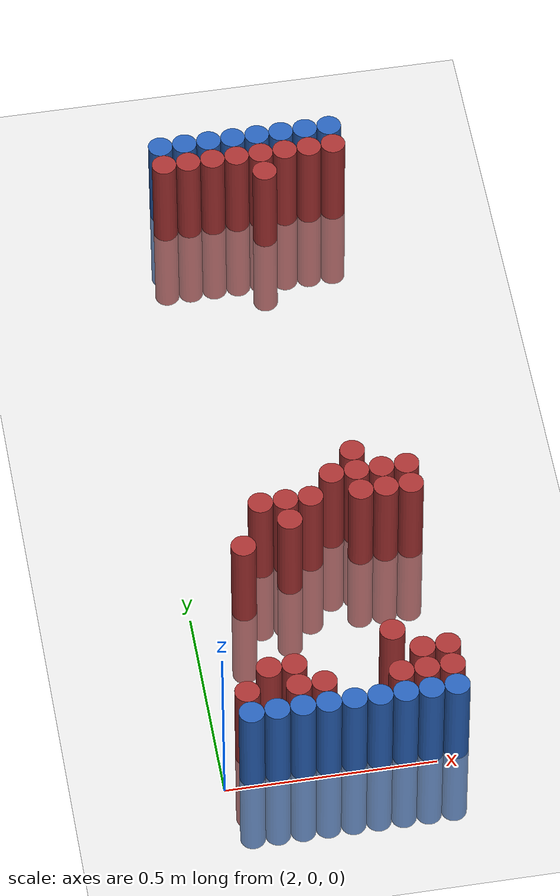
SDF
<sdf version="1.6">
 <world name="default">
  <model name="ground_plane">
   <static>1</static>
   <link name="link">
    <collision name="collision">
     <geometry><plane><normal>0 0 1</normal><size>100 100</size></plane></geometry>
     <surface><friction><ode><mu>100</mu><mu2>50</mu2></ode></friction></surface>
    </collision>
    <visual name="visual">
     <cast_shadows>0</cast_shadows>
     <geometry><plane><normal>0 0 1</normal><size>100 100</size></plane></geometry>
     <material>
      <script><uri>file://media/materials/scripts/gazebo.material</uri><name>Gazebo/Grey</name></script>
     </material>
    </visual>
   </link>
  </model>
  <model name="unit_cylinder_96">
   <static>1</static>
   <pose>2.130000 1.770000 0.000000 0.000000 0.000000 0.000000</pose>
   <link name="link">
    <inertial>
     <mass>1</mass>
     <inertia><ixx>0.145833</ixx><ixy>0</ixy><ixz>0</ixz><iyy>0.145833</iyy><iyz>0</iyz><izz>0.125</izz></inertia>
    </inertial>
    <collision name="collision">
     <geometry><cylinder><radius>0.030000</radius><length>0.5</length></cylinder></geometry>
    </collision>
    <visual name="visual">
     <geometry><cylinder><radius>0.030000</radius><length>0.5</length></cylinder></geometry>
     <material>
      <ambient>0.152000 0.379000 0.720000 1</ambient>
      <diffuse>0.152000 0.379000 0.720000 1</diffuse>
     </material>
     <material>
      <script><name>Gazebo/Grey</name><uri>file://media/materials/scripts/gazebo.material</uri></script>
     </material>
    </visual>
   </link>
  </model>
  <model name="unit_cylinder_97">
   <static>1</static>
   <pose>2.190000 1.770000 0.000000 0.000000 0.000000 0.000000</pose>
   <link name="link">
    <inertial>
     <mass>1</mass>
     <inertia><ixx>0.145833</ixx><ixy>0</ixy><ixz>0</ixz><iyy>0.145833</iyy><iyz>0</iyz><izz>0.125</izz></inertia>
    </inertial>
    <collision name="collision">
     <geometry><cylinder><radius>0.030000</radius><length>0.5</length></cylinder></geometry>
    </collision>
    <visual name="visual">
     <geometry><cylinder><radius>0.030000</radius><length>0.5</length></cylinder></geometry>
     <material>
      <ambient>0.152000 0.379000 0.720000 1</ambient>
      <diffuse>0.152000 0.379000 0.720000 1</diffuse>
     </material>
     <material>
      <script><name>Gazebo/Grey</name><uri>file://media/materials/scripts/gazebo.material</uri></script>
     </material>
    </visual>
   </link>
  </model>
  <model name="unit_cylinder_98">
   <static>1</static>
   <pose>2.250000 1.770000 0.000000 0.000000 0.000000 0.000000</pose>
   <link name="link">
    <inertial>
     <mass>1</mass>
     <inertia><ixx>0.145833</ixx><ixy>0</ixy><ixz>0</ixz><iyy>0.145833</iyy><iyz>0</iyz><izz>0.125</izz></inertia>
    </inertial>
    <collision name="collision">
     <geometry><cylinder><radius>0.030000</radius><length>0.5</length></cylinder></geometry>
    </collision>
    <visual name="visual">
     <geometry><cylinder><radius>0.030000</radius><length>0.5</length></cylinder></geometry>
     <material>
      <ambient>0.152000 0.379000 0.720000 1</ambient>
      <diffuse>0.152000 0.379000 0.720000 1</diffuse>
     </material>
     <material>
      <script><name>Gazebo/Grey</name><uri>file://media/materials/scripts/gazebo.material</uri></script>
     </material>
    </visual>
   </link>
  </model>
  <model name="unit_cylinder_99">
   <static>1</static>
   <pose>2.310000 1.770000 0.000000 0.000000 0.000000 0.000000</pose>
   <link name="link">
    <inertial>
     <mass>1</mass>
     <inertia><ixx>0.145833</ixx><ixy>0</ixy><ixz>0</ixz><iyy>0.145833</iyy><iyz>0</iyz><izz>0.125</izz></inertia>
    </inertial>
    <collision name="collision">
     <geometry><cylinder><radius>0.030000</radius><length>0.5</length></cylinder></geometry>
    </collision>
    <visual name="visual">
     <geometry><cylinder><radius>0.030000</radius><length>0.5</length></cylinder></geometry>
     <material>
      <ambient>0.152000 0.379000 0.720000 1</ambient>
      <diffuse>0.152000 0.379000 0.720000 1</diffuse>
     </material>
     <material>
      <script><name>Gazebo/Grey</name><uri>file://media/materials/scripts/gazebo.material</uri></script>
     </material>
    </visual>
   </link>
  </model>
  <model name="unit_cylinder_100">
   <static>1</static>
   <pose>2.370000 1.770000 0.000000 0.000000 0.000000 0.000000</pose>
   <link name="link">
    <inertial>
     <mass>1</mass>
     <inertia><ixx>0.145833</ixx><ixy>0</ixy><ixz>0</ixz><iyy>0.145833</iyy><iyz>0</iyz><izz>0.125</izz></inertia>
    </inertial>
    <collision name="collision">
     <geometry><cylinder><radius>0.030000</radius><length>0.5</length></cylinder></geometry>
    </collision>
    <visual name="visual">
     <geometry><cylinder><radius>0.030000</radius><length>0.5</length></cylinder></geometry>
     <material>
      <ambient>0.152000 0.379000 0.720000 1</ambient>
      <diffuse>0.152000 0.379000 0.720000 1</diffuse>
     </material>
     <material>
      <script><name>Gazebo/Grey</name><uri>file://media/materials/scripts/gazebo.material</uri></script>
     </material>
    </visual>
   </link>
  </model>
  <model name="unit_cylinder_101">
   <static>1</static>
   <pose>2.430000 1.770000 0.000000 0.000000 0.000000 0.000000</pose>
   <link name="link">
    <inertial>
     <mass>1</mass>
     <inertia><ixx>0.145833</ixx><ixy>0</ixy><ixz>0</ixz><iyy>0.145833</iyy><iyz>0</iyz><izz>0.125</izz></inertia>
    </inertial>
    <collision name="collision">
     <geometry><cylinder><radius>0.030000</radius><length>0.5</length></cylinder></geometry>
    </collision>
    <visual name="visual">
     <geometry><cylinder><radius>0.030000</radius><length>0.5</length></cylinder></geometry>
     <material>
      <ambient>0.152000 0.379000 0.720000 1</ambient>
      <diffuse>0.152000 0.379000 0.720000 1</diffuse>
     </material>
     <material>
      <script><name>Gazebo/Grey</name><uri>file://media/materials/scripts/gazebo.material</uri></script>
     </material>
    </visual>
   </link>
  </model>
  <model name="unit_cylinder_102">
   <static>1</static>
   <pose>2.490000 1.770000 0.000000 0.000000 0.000000 0.000000</pose>
   <link name="link">
    <inertial>
     <mass>1</mass>
     <inertia><ixx>0.145833</ixx><ixy>0</ixy><ixz>0</ixz><iyy>0.145833</iyy><iyz>0</iyz><izz>0.125</izz></inertia>
    </inertial>
    <collision name="collision">
     <geometry><cylinder><radius>0.030000</radius><length>0.5</length></cylinder></geometry>
    </collision>
    <visual name="visual">
     <geometry><cylinder><radius>0.030000</radius><length>0.5</length></cylinder></geometry>
     <material>
      <ambient>0.152000 0.379000 0.720000 1</ambient>
      <diffuse>0.152000 0.379000 0.720000 1</diffuse>
     </material>
     <material>
      <script><name>Gazebo/Grey</name><uri>file://media/materials/scripts/gazebo.material</uri></script>
     </material>
    </visual>
   </link>
  </model>
  <model name="unit_cylinder_103">
   <static>1</static>
   <pose>2.550000 1.770000 0.000000 0.000000 0.000000 0.000000</pose>
   <link name="link">
    <inertial>
     <mass>1</mass>
     <inertia><ixx>0.145833</ixx><ixy>0</ixy><ixz>0</ixz><iyy>0.145833</iyy><iyz>0</iyz><izz>0.125</izz></inertia>
    </inertial>
    <collision name="collision">
     <geometry><cylinder><radius>0.030000</radius><length>0.5</length></cylinder></geometry>
    </collision>
    <visual name="visual">
     <geometry><cylinder><radius>0.030000</radius><length>0.5</length></cylinder></geometry>
     <material>
      <ambient>0.152000 0.379000 0.720000 1</ambient>
      <diffuse>0.152000 0.379000 0.720000 1</diffuse>
     </material>
     <material>
      <script><name>Gazebo/Grey</name><uri>file://media/materials/scripts/gazebo.material</uri></script>
     </material>
    </visual>
   </link>
  </model>
  <model name="unit_cylinder_125">
   <static>1</static>
   <pose>2.130000 1.710000 0.000000 0.000000 0.000000 0.000000</pose>
   <link name="link">
    <inertial>
     <mass>1</mass>
     <inertia><ixx>0.145833</ixx><ixy>0</ixy><ixz>0</ixz><iyy>0.145833</iyy><iyz>0</iyz><izz>0.125</izz></inertia>
    </inertial>
    <collision name="collision">
     <geometry><cylinder><radius>0.030000</radius><length>0.5</length></cylinder></geometry>
    </collision>
    <visual name="visual">
     <geometry><cylinder><radius>0.030000</radius><length>0.5</length></cylinder></geometry>
     <material>
      <ambient>0.648000 0.192000 0.192000 1</ambient>
      <diffuse>0.648000 0.192000 0.192000 1</diffuse>
     </material>
     <material>
      <script><name>Gazebo/Grey</name><uri>file://media/materials/scripts/gazebo.material</uri></script>
     </material>
    </visual>
   </link>
  </model>
  <model name="unit_cylinder_126">
   <static>1</static>
   <pose>2.190000 1.710000 0.000000 0.000000 0.000000 0.000000</pose>
   <link name="link">
    <inertial>
     <mass>1</mass>
     <inertia><ixx>0.145833</ixx><ixy>0</ixy><ixz>0</ixz><iyy>0.145833</iyy><iyz>0</iyz><izz>0.125</izz></inertia>
    </inertial>
    <collision name="collision">
     <geometry><cylinder><radius>0.030000</radius><length>0.5</length></cylinder></geometry>
    </collision>
    <visual name="visual">
     <geometry><cylinder><radius>0.030000</radius><length>0.5</length></cylinder></geometry>
     <material>
      <ambient>0.648000 0.192000 0.192000 1</ambient>
      <diffuse>0.648000 0.192000 0.192000 1</diffuse>
     </material>
     <material>
      <script><name>Gazebo/Grey</name><uri>file://media/materials/scripts/gazebo.material</uri></script>
     </material>
    </visual>
   </link>
  </model>
  <model name="unit_cylinder_127">
   <static>1</static>
   <pose>2.250000 1.710000 0.000000 0.000000 0.000000 0.000000</pose>
   <link name="link">
    <inertial>
     <mass>1</mass>
     <inertia><ixx>0.145833</ixx><ixy>0</ixy><ixz>0</ixz><iyy>0.145833</iyy><iyz>0</iyz><izz>0.125</izz></inertia>
    </inertial>
    <collision name="collision">
     <geometry><cylinder><radius>0.030000</radius><length>0.5</length></cylinder></geometry>
    </collision>
    <visual name="visual">
     <geometry><cylinder><radius>0.030000</radius><length>0.5</length></cylinder></geometry>
     <material>
      <ambient>0.648000 0.192000 0.192000 1</ambient>
      <diffuse>0.648000 0.192000 0.192000 1</diffuse>
     </material>
     <material>
      <script><name>Gazebo/Grey</name><uri>file://media/materials/scripts/gazebo.material</uri></script>
     </material>
    </visual>
   </link>
  </model>
  <model name="unit_cylinder_128">
   <static>1</static>
   <pose>2.310000 1.710000 0.000000 0.000000 0.000000 0.000000</pose>
   <link name="link">
    <inertial>
     <mass>1</mass>
     <inertia><ixx>0.145833</ixx><ixy>0</ixy><ixz>0</ixz><iyy>0.145833</iyy><iyz>0</iyz><izz>0.125</izz></inertia>
    </inertial>
    <collision name="collision">
     <geometry><cylinder><radius>0.030000</radius><length>0.5</length></cylinder></geometry>
    </collision>
    <visual name="visual">
     <geometry><cylinder><radius>0.030000</radius><length>0.5</length></cylinder></geometry>
     <material>
      <ambient>0.648000 0.192000 0.192000 1</ambient>
      <diffuse>0.648000 0.192000 0.192000 1</diffuse>
     </material>
     <material>
      <script><name>Gazebo/Grey</name><uri>file://media/materials/scripts/gazebo.material</uri></script>
     </material>
    </visual>
   </link>
  </model>
  <model name="unit_cylinder_129">
   <static>1</static>
   <pose>2.370000 1.710000 0.000000 0.000000 0.000000 0.000000</pose>
   <link name="link">
    <inertial>
     <mass>1</mass>
     <inertia><ixx>0.145833</ixx><ixy>0</ixy><ixz>0</ixz><iyy>0.145833</iyy><iyz>0</iyz><izz>0.125</izz></inertia>
    </inertial>
    <collision name="collision">
     <geometry><cylinder><radius>0.030000</radius><length>0.5</length></cylinder></geometry>
    </collision>
    <visual name="visual">
     <geometry><cylinder><radius>0.030000</radius><length>0.5</length></cylinder></geometry>
     <material>
      <ambient>0.648000 0.192000 0.192000 1</ambient>
      <diffuse>0.648000 0.192000 0.192000 1</diffuse>
     </material>
     <material>
      <script><name>Gazebo/Grey</name><uri>file://media/materials/scripts/gazebo.material</uri></script>
     </material>
    </visual>
   </link>
  </model>
  <model name="unit_cylinder_130">
   <static>1</static>
   <pose>2.430000 1.710000 0.000000 0.000000 0.000000 0.000000</pose>
   <link name="link">
    <inertial>
     <mass>1</mass>
     <inertia><ixx>0.145833</ixx><ixy>0</ixy><ixz>0</ixz><iyy>0.145833</iyy><iyz>0</iyz><izz>0.125</izz></inertia>
    </inertial>
    <collision name="collision">
     <geometry><cylinder><radius>0.030000</radius><length>0.5</length></cylinder></geometry>
    </collision>
    <visual name="visual">
     <geometry><cylinder><radius>0.030000</radius><length>0.5</length></cylinder></geometry>
     <material>
      <ambient>0.648000 0.192000 0.192000 1</ambient>
      <diffuse>0.648000 0.192000 0.192000 1</diffuse>
     </material>
     <material>
      <script><name>Gazebo/Grey</name><uri>file://media/materials/scripts/gazebo.material</uri></script>
     </material>
    </visual>
   </link>
  </model>
  <model name="unit_cylinder_131">
   <static>1</static>
   <pose>2.490000 1.710000 0.000000 0.000000 0.000000 0.000000</pose>
   <link name="link">
    <inertial>
     <mass>1</mass>
     <inertia><ixx>0.145833</ixx><ixy>0</ixy><ixz>0</ixz><iyy>0.145833</iyy><iyz>0</iyz><izz>0.125</izz></inertia>
    </inertial>
    <collision name="collision">
     <geometry><cylinder><radius>0.030000</radius><length>0.5</length></cylinder></geometry>
    </collision>
    <visual name="visual">
     <geometry><cylinder><radius>0.030000</radius><length>0.5</length></cylinder></geometry>
     <material>
      <ambient>0.648000 0.192000 0.192000 1</ambient>
      <diffuse>0.648000 0.192000 0.192000 1</diffuse>
     </material>
     <material>
      <script><name>Gazebo/Grey</name><uri>file://media/materials/scripts/gazebo.material</uri></script>
     </material>
    </visual>
   </link>
  </model>
  <model name="unit_cylinder_132">
   <static>1</static>
   <pose>2.550000 1.710000 0.000000 0.000000 0.000000 0.000000</pose>
   <link name="link">
    <inertial>
     <mass>1</mass>
     <inertia><ixx>0.145833</ixx><ixy>0</ixy><ixz>0</ixz><iyy>0.145833</iyy><iyz>0</iyz><izz>0.125</izz></inertia>
    </inertial>
    <collision name="collision">
     <geometry><cylinder><radius>0.030000</radius><length>0.5</length></cylinder></geometry>
    </collision>
    <visual name="visual">
     <geometry><cylinder><radius>0.030000</radius><length>0.5</length></cylinder></geometry>
     <material>
      <ambient>0.648000 0.192000 0.192000 1</ambient>
      <diffuse>0.648000 0.192000 0.192000 1</diffuse>
     </material>
     <material>
      <script><name>Gazebo/Grey</name><uri>file://media/materials/scripts/gazebo.material</uri></script>
     </material>
    </visual>
   </link>
  </model>
  <model name="unit_cylinder_144">
   <static>1</static>
   <pose>2.370000 1.650000 0.000000 0.000000 0.000000 0.000000</pose>
   <link name="link">
    <inertial>
     <mass>1</mass>
     <inertia><ixx>0.145833</ixx><ixy>0</ixy><ixz>0</ixz><iyy>0.145833</iyy><iyz>0</iyz><izz>0.125</izz></inertia>
    </inertial>
    <collision name="collision">
     <geometry><cylinder><radius>0.030000</radius><length>0.5</length></cylinder></geometry>
    </collision>
    <visual name="visual">
     <geometry><cylinder><radius>0.030000</radius><length>0.5</length></cylinder></geometry>
     <material>
      <ambient>0.648000 0.192000 0.192000 1</ambient>
      <diffuse>0.648000 0.192000 0.192000 1</diffuse>
     </material>
     <material>
      <script><name>Gazebo/Grey</name><uri>file://media/materials/scripts/gazebo.material</uri></script>
     </material>
    </visual>
   </link>
  </model>
  <model name="unit_cylinder_199">
   <static>1</static>
   <pose>2.430000 0.750000 0.000000 0.000000 0.000000 0.000000</pose>
   <link name="link">
    <inertial>
     <mass>1</mass>
     <inertia><ixx>0.145833</ixx><ixy>0</ixy><ixz>0</ixz><iyy>0.145833</iyy><iyz>0</iyz><izz>0.125</izz></inertia>
    </inertial>
    <collision name="collision">
     <geometry><cylinder><radius>0.030000</radius><length>0.5</length></cylinder></geometry>
    </collision>
    <visual name="visual">
     <geometry><cylinder><radius>0.030000</radius><length>0.5</length></cylinder></geometry>
     <material>
      <ambient>0.648000 0.192000 0.192000 1</ambient>
      <diffuse>0.648000 0.192000 0.192000 1</diffuse>
     </material>
     <material>
      <script><name>Gazebo/Grey</name><uri>file://media/materials/scripts/gazebo.material</uri></script>
     </material>
    </visual>
   </link>
  </model>
  <model name="unit_cylinder_200">
   <static>1</static>
   <pose>2.370000 0.690000 0.000000 0.000000 0.000000 0.000000</pose>
   <link name="link">
    <inertial>
     <mass>1</mass>
     <inertia><ixx>0.145833</ixx><ixy>0</ixy><ixz>0</ixz><iyy>0.145833</iyy><iyz>0</iyz><izz>0.125</izz></inertia>
    </inertial>
    <collision name="collision">
     <geometry><cylinder><radius>0.030000</radius><length>0.5</length></cylinder></geometry>
    </collision>
    <visual name="visual">
     <geometry><cylinder><radius>0.030000</radius><length>0.5</length></cylinder></geometry>
     <material>
      <ambient>0.648000 0.192000 0.192000 1</ambient>
      <diffuse>0.648000 0.192000 0.192000 1</diffuse>
     </material>
     <material>
      <script><name>Gazebo/Grey</name><uri>file://media/materials/scripts/gazebo.material</uri></script>
     </material>
    </visual>
   </link>
  </model>
  <model name="unit_cylinder_201">
   <static>1</static>
   <pose>2.430000 0.690000 0.000000 0.000000 0.000000 0.000000</pose>
   <link name="link">
    <inertial>
     <mass>1</mass>
     <inertia><ixx>0.145833</ixx><ixy>0</ixy><ixz>0</ixz><iyy>0.145833</iyy><iyz>0</iyz><izz>0.125</izz></inertia>
    </inertial>
    <collision name="collision">
     <geometry><cylinder><radius>0.030000</radius><length>0.5</length></cylinder></geometry>
    </collision>
    <visual name="visual">
     <geometry><cylinder><radius>0.030000</radius><length>0.5</length></cylinder></geometry>
     <material>
      <ambient>0.648000 0.192000 0.192000 1</ambient>
      <diffuse>0.648000 0.192000 0.192000 1</diffuse>
     </material>
     <material>
      <script><name>Gazebo/Grey</name><uri>file://media/materials/scripts/gazebo.material</uri></script>
     </material>
    </visual>
   </link>
  </model>
  <model name="unit_cylinder_202">
   <static>1</static>
   <pose>2.490000 0.690000 0.000000 0.000000 0.000000 0.000000</pose>
   <link name="link">
    <inertial>
     <mass>1</mass>
     <inertia><ixx>0.145833</ixx><ixy>0</ixy><ixz>0</ixz><iyy>0.145833</iyy><iyz>0</iyz><izz>0.125</izz></inertia>
    </inertial>
    <collision name="collision">
     <geometry><cylinder><radius>0.030000</radius><length>0.5</length></cylinder></geometry>
    </collision>
    <visual name="visual">
     <geometry><cylinder><radius>0.030000</radius><length>0.5</length></cylinder></geometry>
     <material>
      <ambient>0.648000 0.192000 0.192000 1</ambient>
      <diffuse>0.648000 0.192000 0.192000 1</diffuse>
     </material>
     <material>
      <script><name>Gazebo/Grey</name><uri>file://media/materials/scripts/gazebo.material</uri></script>
     </material>
    </visual>
   </link>
  </model>
  <model name="unit_cylinder_203">
   <static>1</static>
   <pose>2.550000 0.690000 0.000000 0.000000 0.000000 0.000000</pose>
   <link name="link">
    <inertial>
     <mass>1</mass>
     <inertia><ixx>0.145833</ixx><ixy>0</ixy><ixz>0</ixz><iyy>0.145833</iyy><iyz>0</iyz><izz>0.125</izz></inertia>
    </inertial>
    <collision name="collision">
     <geometry><cylinder><radius>0.030000</radius><length>0.5</length></cylinder></geometry>
    </collision>
    <visual name="visual">
     <geometry><cylinder><radius>0.030000</radius><length>0.5</length></cylinder></geometry>
     <material>
      <ambient>0.648000 0.192000 0.192000 1</ambient>
      <diffuse>0.648000 0.192000 0.192000 1</diffuse>
     </material>
     <material>
      <script><name>Gazebo/Grey</name><uri>file://media/materials/scripts/gazebo.material</uri></script>
     </material>
    </visual>
   </link>
  </model>
  <model name="unit_cylinder_206">
   <static>1</static>
   <pose>2.190000 0.630000 0.000000 0.000000 0.000000 0.000000</pose>
   <link name="link">
    <inertial>
     <mass>1</mass>
     <inertia><ixx>0.145833</ixx><ixy>0</ixy><ixz>0</ixz><iyy>0.145833</iyy><iyz>0</iyz><izz>0.125</izz></inertia>
    </inertial>
    <collision name="collision">
     <geometry><cylinder><radius>0.030000</radius><length>0.5</length></cylinder></geometry>
    </collision>
    <visual name="visual">
     <geometry><cylinder><radius>0.030000</radius><length>0.5</length></cylinder></geometry>
     <material>
      <ambient>0.648000 0.192000 0.192000 1</ambient>
      <diffuse>0.648000 0.192000 0.192000 1</diffuse>
     </material>
     <material>
      <script><name>Gazebo/Grey</name><uri>file://media/materials/scripts/gazebo.material</uri></script>
     </material>
    </visual>
   </link>
  </model>
  <model name="unit_cylinder_207">
   <static>1</static>
   <pose>2.250000 0.630000 0.000000 0.000000 0.000000 0.000000</pose>
   <link name="link">
    <inertial>
     <mass>1</mass>
     <inertia><ixx>0.145833</ixx><ixy>0</ixy><ixz>0</ixz><iyy>0.145833</iyy><iyz>0</iyz><izz>0.125</izz></inertia>
    </inertial>
    <collision name="collision">
     <geometry><cylinder><radius>0.030000</radius><length>0.5</length></cylinder></geometry>
    </collision>
    <visual name="visual">
     <geometry><cylinder><radius>0.030000</radius><length>0.5</length></cylinder></geometry>
     <material>
      <ambient>0.648000 0.192000 0.192000 1</ambient>
      <diffuse>0.648000 0.192000 0.192000 1</diffuse>
     </material>
     <material>
      <script><name>Gazebo/Grey</name><uri>file://media/materials/scripts/gazebo.material</uri></script>
     </material>
    </visual>
   </link>
  </model>
  <model name="unit_cylinder_208">
   <static>1</static>
   <pose>2.310000 0.630000 0.000000 0.000000 0.000000 0.000000</pose>
   <link name="link">
    <inertial>
     <mass>1</mass>
     <inertia><ixx>0.145833</ixx><ixy>0</ixy><ixz>0</ixz><iyy>0.145833</iyy><iyz>0</iyz><izz>0.125</izz></inertia>
    </inertial>
    <collision name="collision">
     <geometry><cylinder><radius>0.030000</radius><length>0.5</length></cylinder></geometry>
    </collision>
    <visual name="visual">
     <geometry><cylinder><radius>0.030000</radius><length>0.5</length></cylinder></geometry>
     <material>
      <ambient>0.648000 0.192000 0.192000 1</ambient>
      <diffuse>0.648000 0.192000 0.192000 1</diffuse>
     </material>
     <material>
      <script><name>Gazebo/Grey</name><uri>file://media/materials/scripts/gazebo.material</uri></script>
     </material>
    </visual>
   </link>
  </model>
  <model name="unit_cylinder_209">
   <static>1</static>
   <pose>2.430000 0.630000 0.000000 0.000000 0.000000 0.000000</pose>
   <link name="link">
    <inertial>
     <mass>1</mass>
     <inertia><ixx>0.145833</ixx><ixy>0</ixy><ixz>0</ixz><iyy>0.145833</iyy><iyz>0</iyz><izz>0.125</izz></inertia>
    </inertial>
    <collision name="collision">
     <geometry><cylinder><radius>0.030000</radius><length>0.5</length></cylinder></geometry>
    </collision>
    <visual name="visual">
     <geometry><cylinder><radius>0.030000</radius><length>0.5</length></cylinder></geometry>
     <material>
      <ambient>0.648000 0.192000 0.192000 1</ambient>
      <diffuse>0.648000 0.192000 0.192000 1</diffuse>
     </material>
     <material>
      <script><name>Gazebo/Grey</name><uri>file://media/materials/scripts/gazebo.material</uri></script>
     </material>
    </visual>
   </link>
  </model>
  <model name="unit_cylinder_210">
   <static>1</static>
   <pose>2.490000 0.630000 0.000000 0.000000 0.000000 0.000000</pose>
   <link name="link">
    <inertial>
     <mass>1</mass>
     <inertia><ixx>0.145833</ixx><ixy>0</ixy><ixz>0</ixz><iyy>0.145833</iyy><iyz>0</iyz><izz>0.125</izz></inertia>
    </inertial>
    <collision name="collision">
     <geometry><cylinder><radius>0.030000</radius><length>0.5</length></cylinder></geometry>
    </collision>
    <visual name="visual">
     <geometry><cylinder><radius>0.030000</radius><length>0.5</length></cylinder></geometry>
     <material>
      <ambient>0.648000 0.192000 0.192000 1</ambient>
      <diffuse>0.648000 0.192000 0.192000 1</diffuse>
     </material>
     <material>
      <script><name>Gazebo/Grey</name><uri>file://media/materials/scripts/gazebo.material</uri></script>
     </material>
    </visual>
   </link>
  </model>
  <model name="unit_cylinder_211">
   <static>1</static>
   <pose>2.550000 0.630000 0.000000 0.000000 0.000000 0.000000</pose>
   <link name="link">
    <inertial>
     <mass>1</mass>
     <inertia><ixx>0.145833</ixx><ixy>0</ixy><ixz>0</ixz><iyy>0.145833</iyy><iyz>0</iyz><izz>0.125</izz></inertia>
    </inertial>
    <collision name="collision">
     <geometry><cylinder><radius>0.030000</radius><length>0.5</length></cylinder></geometry>
    </collision>
    <visual name="visual">
     <geometry><cylinder><radius>0.030000</radius><length>0.5</length></cylinder></geometry>
     <material>
      <ambient>0.648000 0.192000 0.192000 1</ambient>
      <diffuse>0.648000 0.192000 0.192000 1</diffuse>
     </material>
     <material>
      <script><name>Gazebo/Grey</name><uri>file://media/materials/scripts/gazebo.material</uri></script>
     </material>
    </visual>
   </link>
  </model>
  <model name="unit_cylinder_216">
   <static>1</static>
   <pose>2.250000 0.570000 0.000000 0.000000 0.000000 0.000000</pose>
   <link name="link">
    <inertial>
     <mass>1</mass>
     <inertia><ixx>0.145833</ixx><ixy>0</ixy><ixz>0</ixz><iyy>0.145833</iyy><iyz>0</iyz><izz>0.125</izz></inertia>
    </inertial>
    <collision name="collision">
     <geometry><cylinder><radius>0.030000</radius><length>0.5</length></cylinder></geometry>
    </collision>
    <visual name="visual">
     <geometry><cylinder><radius>0.030000</radius><length>0.5</length></cylinder></geometry>
     <material>
      <ambient>0.648000 0.192000 0.192000 1</ambient>
      <diffuse>0.648000 0.192000 0.192000 1</diffuse>
     </material>
     <material>
      <script><name>Gazebo/Grey</name><uri>file://media/materials/scripts/gazebo.material</uri></script>
     </material>
    </visual>
   </link>
  </model>
  <model name="unit_cylinder_221">
   <static>1</static>
   <pose>2.130000 0.510000 0.000000 0.000000 0.000000 0.000000</pose>
   <link name="link">
    <inertial>
     <mass>1</mass>
     <inertia><ixx>0.145833</ixx><ixy>0</ixy><ixz>0</ixz><iyy>0.145833</iyy><iyz>0</iyz><izz>0.125</izz></inertia>
    </inertial>
    <collision name="collision">
     <geometry><cylinder><radius>0.030000</radius><length>0.5</length></cylinder></geometry>
    </collision>
    <visual name="visual">
     <geometry><cylinder><radius>0.030000</radius><length>0.5</length></cylinder></geometry>
     <material>
      <ambient>0.648000 0.192000 0.192000 1</ambient>
      <diffuse>0.648000 0.192000 0.192000 1</diffuse>
     </material>
     <material>
      <script><name>Gazebo/Grey</name><uri>file://media/materials/scripts/gazebo.material</uri></script>
     </material>
    </visual>
   </link>
  </model>
  <model name="unit_cylinder_240">
   <static>1</static>
   <pose>2.430000 0.210000 0.000000 0.000000 0.000000 0.000000</pose>
   <link name="link">
    <inertial>
     <mass>1</mass>
     <inertia><ixx>0.145833</ixx><ixy>0</ixy><ixz>0</ixz><iyy>0.145833</iyy><iyz>0</iyz><izz>0.125</izz></inertia>
    </inertial>
    <collision name="collision">
     <geometry><cylinder><radius>0.030000</radius><length>0.5</length></cylinder></geometry>
    </collision>
    <visual name="visual">
     <geometry><cylinder><radius>0.030000</radius><length>0.5</length></cylinder></geometry>
     <material>
      <ambient>0.648000 0.192000 0.192000 1</ambient>
      <diffuse>0.648000 0.192000 0.192000 1</diffuse>
     </material>
     <material>
      <script><name>Gazebo/Grey</name><uri>file://media/materials/scripts/gazebo.material</uri></script>
     </material>
    </visual>
   </link>
  </model>
  <model name="unit_cylinder_247">
   <static>1</static>
   <pose>2.130000 0.150000 0.000000 0.000000 0.000000 0.000000</pose>
   <link name="link">
    <inertial>
     <mass>1</mass>
     <inertia><ixx>0.145833</ixx><ixy>0</ixy><ixz>0</ixz><iyy>0.145833</iyy><iyz>0</iyz><izz>0.125</izz></inertia>
    </inertial>
    <collision name="collision">
     <geometry><cylinder><radius>0.030000</radius><length>0.5</length></cylinder></geometry>
    </collision>
    <visual name="visual">
     <geometry><cylinder><radius>0.030000</radius><length>0.5</length></cylinder></geometry>
     <material>
      <ambient>0.648000 0.192000 0.192000 1</ambient>
      <diffuse>0.648000 0.192000 0.192000 1</diffuse>
     </material>
     <material>
      <script><name>Gazebo/Grey</name><uri>file://media/materials/scripts/gazebo.material</uri></script>
     </material>
    </visual>
   </link>
  </model>
  <model name="unit_cylinder_248">
   <static>1</static>
   <pose>2.190000 0.150000 0.000000 0.000000 0.000000 0.000000</pose>
   <link name="link">
    <inertial>
     <mass>1</mass>
     <inertia><ixx>0.145833</ixx><ixy>0</ixy><ixz>0</ixz><iyy>0.145833</iyy><iyz>0</iyz><izz>0.125</izz></inertia>
    </inertial>
    <collision name="collision">
     <geometry><cylinder><radius>0.030000</radius><length>0.5</length></cylinder></geometry>
    </collision>
    <visual name="visual">
     <geometry><cylinder><radius>0.030000</radius><length>0.5</length></cylinder></geometry>
     <material>
      <ambient>0.648000 0.192000 0.192000 1</ambient>
      <diffuse>0.648000 0.192000 0.192000 1</diffuse>
     </material>
     <material>
      <script><name>Gazebo/Grey</name><uri>file://media/materials/scripts/gazebo.material</uri></script>
     </material>
    </visual>
   </link>
  </model>
  <model name="unit_cylinder_249">
   <static>1</static>
   <pose>2.490000 0.150000 0.000000 0.000000 0.000000 0.000000</pose>
   <link name="link">
    <inertial>
     <mass>1</mass>
     <inertia><ixx>0.145833</ixx><ixy>0</ixy><ixz>0</ixz><iyy>0.145833</iyy><iyz>0</iyz><izz>0.125</izz></inertia>
    </inertial>
    <collision name="collision">
     <geometry><cylinder><radius>0.030000</radius><length>0.5</length></cylinder></geometry>
    </collision>
    <visual name="visual">
     <geometry><cylinder><radius>0.030000</radius><length>0.5</length></cylinder></geometry>
     <material>
      <ambient>0.648000 0.192000 0.192000 1</ambient>
      <diffuse>0.648000 0.192000 0.192000 1</diffuse>
     </material>
     <material>
      <script><name>Gazebo/Grey</name><uri>file://media/materials/scripts/gazebo.material</uri></script>
     </material>
    </visual>
   </link>
  </model>
  <model name="unit_cylinder_250">
   <static>1</static>
   <pose>2.550000 0.150000 0.000000 0.000000 0.000000 0.000000</pose>
   <link name="link">
    <inertial>
     <mass>1</mass>
     <inertia><ixx>0.145833</ixx><ixy>0</ixy><ixz>0</ixz><iyy>0.145833</iyy><iyz>0</iyz><izz>0.125</izz></inertia>
    </inertial>
    <collision name="collision">
     <geometry><cylinder><radius>0.030000</radius><length>0.5</length></cylinder></geometry>
    </collision>
    <visual name="visual">
     <geometry><cylinder><radius>0.030000</radius><length>0.5</length></cylinder></geometry>
     <material>
      <ambient>0.648000 0.192000 0.192000 1</ambient>
      <diffuse>0.648000 0.192000 0.192000 1</diffuse>
     </material>
     <material>
      <script><name>Gazebo/Grey</name><uri>file://media/materials/scripts/gazebo.material</uri></script>
     </material>
    </visual>
   </link>
  </model>
  <model name="unit_cylinder_254">
   <static>1</static>
   <pose>2.070000 0.090000 0.000000 0.000000 0.000000 0.000000</pose>
   <link name="link">
    <inertial>
     <mass>1</mass>
     <inertia><ixx>0.145833</ixx><ixy>0</ixy><ixz>0</ixz><iyy>0.145833</iyy><iyz>0</iyz><izz>0.125</izz></inertia>
    </inertial>
    <collision name="collision">
     <geometry><cylinder><radius>0.030000</radius><length>0.5</length></cylinder></geometry>
    </collision>
    <visual name="visual">
     <geometry><cylinder><radius>0.030000</radius><length>0.5</length></cylinder></geometry>
     <material>
      <ambient>0.648000 0.192000 0.192000 1</ambient>
      <diffuse>0.648000 0.192000 0.192000 1</diffuse>
     </material>
     <material>
      <script><name>Gazebo/Grey</name><uri>file://media/materials/scripts/gazebo.material</uri></script>
     </material>
    </visual>
   </link>
  </model>
  <model name="unit_cylinder_255">
   <static>1</static>
   <pose>2.190000 0.090000 0.000000 0.000000 0.000000 0.000000</pose>
   <link name="link">
    <inertial>
     <mass>1</mass>
     <inertia><ixx>0.145833</ixx><ixy>0</ixy><ixz>0</ixz><iyy>0.145833</iyy><iyz>0</iyz><izz>0.125</izz></inertia>
    </inertial>
    <collision name="collision">
     <geometry><cylinder><radius>0.030000</radius><length>0.5</length></cylinder></geometry>
    </collision>
    <visual name="visual">
     <geometry><cylinder><radius>0.030000</radius><length>0.5</length></cylinder></geometry>
     <material>
      <ambient>0.648000 0.192000 0.192000 1</ambient>
      <diffuse>0.648000 0.192000 0.192000 1</diffuse>
     </material>
     <material>
      <script><name>Gazebo/Grey</name><uri>file://media/materials/scripts/gazebo.material</uri></script>
     </material>
    </visual>
   </link>
  </model>
  <model name="unit_cylinder_256">
   <static>1</static>
   <pose>2.250000 0.090000 0.000000 0.000000 0.000000 0.000000</pose>
   <link name="link">
    <inertial>
     <mass>1</mass>
     <inertia><ixx>0.145833</ixx><ixy>0</ixy><ixz>0</ixz><iyy>0.145833</iyy><iyz>0</iyz><izz>0.125</izz></inertia>
    </inertial>
    <collision name="collision">
     <geometry><cylinder><radius>0.030000</radius><length>0.5</length></cylinder></geometry>
    </collision>
    <visual name="visual">
     <geometry><cylinder><radius>0.030000</radius><length>0.5</length></cylinder></geometry>
     <material>
      <ambient>0.648000 0.192000 0.192000 1</ambient>
      <diffuse>0.648000 0.192000 0.192000 1</diffuse>
     </material>
     <material>
      <script><name>Gazebo/Grey</name><uri>file://media/materials/scripts/gazebo.material</uri></script>
     </material>
    </visual>
   </link>
  </model>
  <model name="unit_cylinder_257">
   <static>1</static>
   <pose>2.430000 0.090000 0.000000 0.000000 0.000000 0.000000</pose>
   <link name="link">
    <inertial>
     <mass>1</mass>
     <inertia><ixx>0.145833</ixx><ixy>0</ixy><ixz>0</ixz><iyy>0.145833</iyy><iyz>0</iyz><izz>0.125</izz></inertia>
    </inertial>
    <collision name="collision">
     <geometry><cylinder><radius>0.030000</radius><length>0.5</length></cylinder></geometry>
    </collision>
    <visual name="visual">
     <geometry><cylinder><radius>0.030000</radius><length>0.5</length></cylinder></geometry>
     <material>
      <ambient>0.648000 0.192000 0.192000 1</ambient>
      <diffuse>0.648000 0.192000 0.192000 1</diffuse>
     </material>
     <material>
      <script><name>Gazebo/Grey</name><uri>file://media/materials/scripts/gazebo.material</uri></script>
     </material>
    </visual>
   </link>
  </model>
  <model name="unit_cylinder_258">
   <static>1</static>
   <pose>2.490000 0.090000 0.000000 0.000000 0.000000 0.000000</pose>
   <link name="link">
    <inertial>
     <mass>1</mass>
     <inertia><ixx>0.145833</ixx><ixy>0</ixy><ixz>0</ixz><iyy>0.145833</iyy><iyz>0</iyz><izz>0.125</izz></inertia>
    </inertial>
    <collision name="collision">
     <geometry><cylinder><radius>0.030000</radius><length>0.5</length></cylinder></geometry>
    </collision>
    <visual name="visual">
     <geometry><cylinder><radius>0.030000</radius><length>0.5</length></cylinder></geometry>
     <material>
      <ambient>0.648000 0.192000 0.192000 1</ambient>
      <diffuse>0.648000 0.192000 0.192000 1</diffuse>
     </material>
     <material>
      <script><name>Gazebo/Grey</name><uri>file://media/materials/scripts/gazebo.material</uri></script>
     </material>
    </visual>
   </link>
  </model>
  <model name="unit_cylinder_259">
   <static>1</static>
   <pose>2.550000 0.090000 0.000000 0.000000 0.000000 0.000000</pose>
   <link name="link">
    <inertial>
     <mass>1</mass>
     <inertia><ixx>0.145833</ixx><ixy>0</ixy><ixz>0</ixz><iyy>0.145833</iyy><iyz>0</iyz><izz>0.125</izz></inertia>
    </inertial>
    <collision name="collision">
     <geometry><cylinder><radius>0.030000</radius><length>0.5</length></cylinder></geometry>
    </collision>
    <visual name="visual">
     <geometry><cylinder><radius>0.030000</radius><length>0.5</length></cylinder></geometry>
     <material>
      <ambient>0.648000 0.192000 0.192000 1</ambient>
      <diffuse>0.648000 0.192000 0.192000 1</diffuse>
     </material>
     <material>
      <script><name>Gazebo/Grey</name><uri>file://media/materials/scripts/gazebo.material</uri></script>
     </material>
    </visual>
   </link>
  </model>
  <model name="unit_cylinder_267">
   <static>1</static>
   <pose>2.070000 0.030000 0.000000 0.000000 0.000000 0.000000</pose>
   <link name="link">
    <inertial>
     <mass>1</mass>
     <inertia><ixx>0.145833</ixx><ixy>0</ixy><ixz>0</ixz><iyy>0.145833</iyy><iyz>0</iyz><izz>0.125</izz></inertia>
    </inertial>
    <collision name="collision">
     <geometry><cylinder><radius>0.030000</radius><length>0.5</length></cylinder></geometry>
    </collision>
    <visual name="visual">
     <geometry><cylinder><radius>0.030000</radius><length>0.5</length></cylinder></geometry>
     <material>
      <ambient>0.152000 0.379000 0.720000 1</ambient>
      <diffuse>0.152000 0.379000 0.720000 1</diffuse>
     </material>
     <material>
      <script><name>Gazebo/Grey</name><uri>file://media/materials/scripts/gazebo.material</uri></script>
     </material>
    </visual>
   </link>
  </model>
  <model name="unit_cylinder_268">
   <static>1</static>
   <pose>2.130000 0.030000 0.000000 0.000000 0.000000 0.000000</pose>
   <link name="link">
    <inertial>
     <mass>1</mass>
     <inertia><ixx>0.145833</ixx><ixy>0</ixy><ixz>0</ixz><iyy>0.145833</iyy><iyz>0</iyz><izz>0.125</izz></inertia>
    </inertial>
    <collision name="collision">
     <geometry><cylinder><radius>0.030000</radius><length>0.5</length></cylinder></geometry>
    </collision>
    <visual name="visual">
     <geometry><cylinder><radius>0.030000</radius><length>0.5</length></cylinder></geometry>
     <material>
      <ambient>0.152000 0.379000 0.720000 1</ambient>
      <diffuse>0.152000 0.379000 0.720000 1</diffuse>
     </material>
     <material>
      <script><name>Gazebo/Grey</name><uri>file://media/materials/scripts/gazebo.material</uri></script>
     </material>
    </visual>
   </link>
  </model>
  <model name="unit_cylinder_269">
   <static>1</static>
   <pose>2.190000 0.030000 0.000000 0.000000 0.000000 0.000000</pose>
   <link name="link">
    <inertial>
     <mass>1</mass>
     <inertia><ixx>0.145833</ixx><ixy>0</ixy><ixz>0</ixz><iyy>0.145833</iyy><iyz>0</iyz><izz>0.125</izz></inertia>
    </inertial>
    <collision name="collision">
     <geometry><cylinder><radius>0.030000</radius><length>0.5</length></cylinder></geometry>
    </collision>
    <visual name="visual">
     <geometry><cylinder><radius>0.030000</radius><length>0.5</length></cylinder></geometry>
     <material>
      <ambient>0.152000 0.379000 0.720000 1</ambient>
      <diffuse>0.152000 0.379000 0.720000 1</diffuse>
     </material>
     <material>
      <script><name>Gazebo/Grey</name><uri>file://media/materials/scripts/gazebo.material</uri></script>
     </material>
    </visual>
   </link>
  </model>
  <model name="unit_cylinder_270">
   <static>1</static>
   <pose>2.250000 0.030000 0.000000 0.000000 0.000000 0.000000</pose>
   <link name="link">
    <inertial>
     <mass>1</mass>
     <inertia><ixx>0.145833</ixx><ixy>0</ixy><ixz>0</ixz><iyy>0.145833</iyy><iyz>0</iyz><izz>0.125</izz></inertia>
    </inertial>
    <collision name="collision">
     <geometry><cylinder><radius>0.030000</radius><length>0.5</length></cylinder></geometry>
    </collision>
    <visual name="visual">
     <geometry><cylinder><radius>0.030000</radius><length>0.5</length></cylinder></geometry>
     <material>
      <ambient>0.152000 0.379000 0.720000 1</ambient>
      <diffuse>0.152000 0.379000 0.720000 1</diffuse>
     </material>
     <material>
      <script><name>Gazebo/Grey</name><uri>file://media/materials/scripts/gazebo.material</uri></script>
     </material>
    </visual>
   </link>
  </model>
  <model name="unit_cylinder_271">
   <static>1</static>
   <pose>2.310000 0.030000 0.000000 0.000000 0.000000 0.000000</pose>
   <link name="link">
    <inertial>
     <mass>1</mass>
     <inertia><ixx>0.145833</ixx><ixy>0</ixy><ixz>0</ixz><iyy>0.145833</iyy><iyz>0</iyz><izz>0.125</izz></inertia>
    </inertial>
    <collision name="collision">
     <geometry><cylinder><radius>0.030000</radius><length>0.5</length></cylinder></geometry>
    </collision>
    <visual name="visual">
     <geometry><cylinder><radius>0.030000</radius><length>0.5</length></cylinder></geometry>
     <material>
      <ambient>0.152000 0.379000 0.720000 1</ambient>
      <diffuse>0.152000 0.379000 0.720000 1</diffuse>
     </material>
     <material>
      <script><name>Gazebo/Grey</name><uri>file://media/materials/scripts/gazebo.material</uri></script>
     </material>
    </visual>
   </link>
  </model>
  <model name="unit_cylinder_272">
   <static>1</static>
   <pose>2.370000 0.030000 0.000000 0.000000 0.000000 0.000000</pose>
   <link name="link">
    <inertial>
     <mass>1</mass>
     <inertia><ixx>0.145833</ixx><ixy>0</ixy><ixz>0</ixz><iyy>0.145833</iyy><iyz>0</iyz><izz>0.125</izz></inertia>
    </inertial>
    <collision name="collision">
     <geometry><cylinder><radius>0.030000</radius><length>0.5</length></cylinder></geometry>
    </collision>
    <visual name="visual">
     <geometry><cylinder><radius>0.030000</radius><length>0.5</length></cylinder></geometry>
     <material>
      <ambient>0.152000 0.379000 0.720000 1</ambient>
      <diffuse>0.152000 0.379000 0.720000 1</diffuse>
     </material>
     <material>
      <script><name>Gazebo/Grey</name><uri>file://media/materials/scripts/gazebo.material</uri></script>
     </material>
    </visual>
   </link>
  </model>
  <model name="unit_cylinder_273">
   <static>1</static>
   <pose>2.430000 0.030000 0.000000 0.000000 0.000000 0.000000</pose>
   <link name="link">
    <inertial>
     <mass>1</mass>
     <inertia><ixx>0.145833</ixx><ixy>0</ixy><ixz>0</ixz><iyy>0.145833</iyy><iyz>0</iyz><izz>0.125</izz></inertia>
    </inertial>
    <collision name="collision">
     <geometry><cylinder><radius>0.030000</radius><length>0.5</length></cylinder></geometry>
    </collision>
    <visual name="visual">
     <geometry><cylinder><radius>0.030000</radius><length>0.5</length></cylinder></geometry>
     <material>
      <ambient>0.152000 0.379000 0.720000 1</ambient>
      <diffuse>0.152000 0.379000 0.720000 1</diffuse>
     </material>
     <material>
      <script><name>Gazebo/Grey</name><uri>file://media/materials/scripts/gazebo.material</uri></script>
     </material>
    </visual>
   </link>
  </model>
  <model name="unit_cylinder_274">
   <static>1</static>
   <pose>2.490000 0.030000 0.000000 0.000000 0.000000 0.000000</pose>
   <link name="link">
    <inertial>
     <mass>1</mass>
     <inertia><ixx>0.145833</ixx><ixy>0</ixy><ixz>0</ixz><iyy>0.145833</iyy><iyz>0</iyz><izz>0.125</izz></inertia>
    </inertial>
    <collision name="collision">
     <geometry><cylinder><radius>0.030000</radius><length>0.5</length></cylinder></geometry>
    </collision>
    <visual name="visual">
     <geometry><cylinder><radius>0.030000</radius><length>0.5</length></cylinder></geometry>
     <material>
      <ambient>0.152000 0.379000 0.720000 1</ambient>
      <diffuse>0.152000 0.379000 0.720000 1</diffuse>
     </material>
     <material>
      <script><name>Gazebo/Grey</name><uri>file://media/materials/scripts/gazebo.material</uri></script>
     </material>
    </visual>
   </link>
  </model>
  <model name="unit_cylinder_275">
   <static>1</static>
   <pose>2.550000 0.030000 0.000000 0.000000 0.000000 0.000000</pose>
   <link name="link">
    <inertial>
     <mass>1</mass>
     <inertia><ixx>0.145833</ixx><ixy>0</ixy><ixz>0</ixz><iyy>0.145833</iyy><iyz>0</iyz><izz>0.125</izz></inertia>
    </inertial>
    <collision name="collision">
     <geometry><cylinder><radius>0.030000</radius><length>0.5</length></cylinder></geometry>
    </collision>
    <visual name="visual">
     <geometry><cylinder><radius>0.030000</radius><length>0.5</length></cylinder></geometry>
     <material>
      <ambient>0.152000 0.379000 0.720000 1</ambient>
      <diffuse>0.152000 0.379000 0.720000 1</diffuse>
     </material>
     <material>
      <script><name>Gazebo/Grey</name><uri>file://media/materials/scripts/gazebo.material</uri></script>
     </material>
    </visual>
   </link>
  </model>
 </world>
</sdf>
